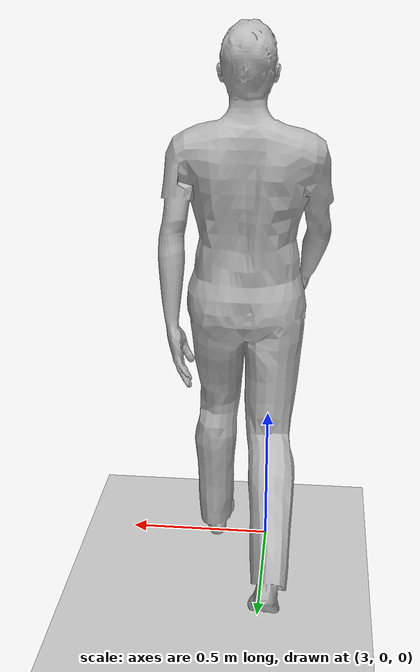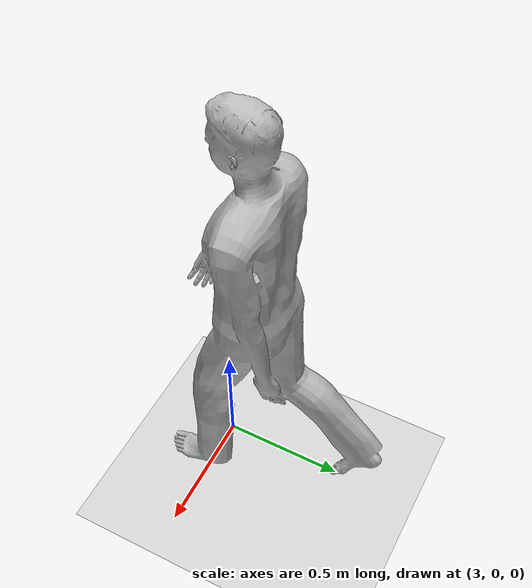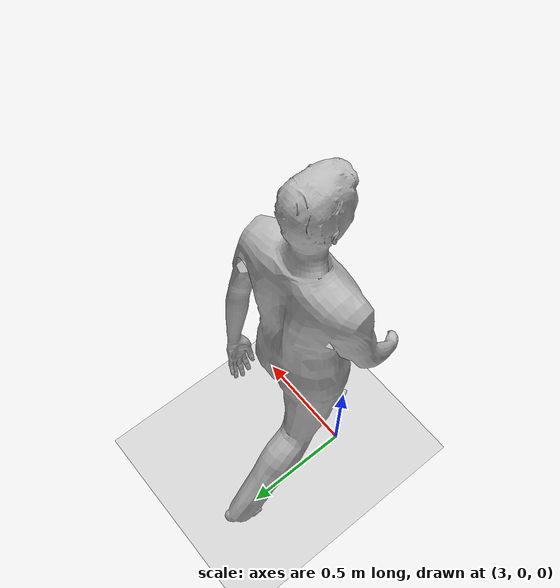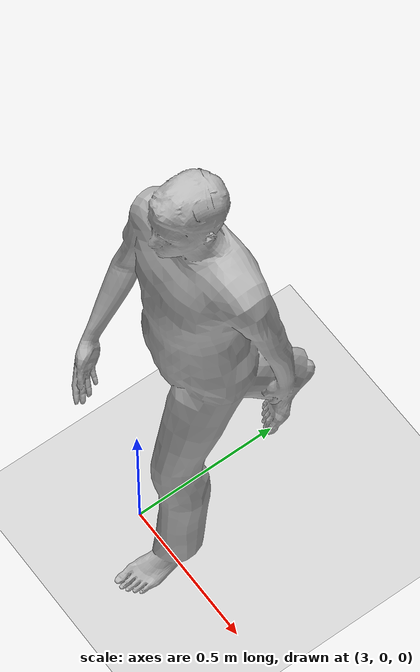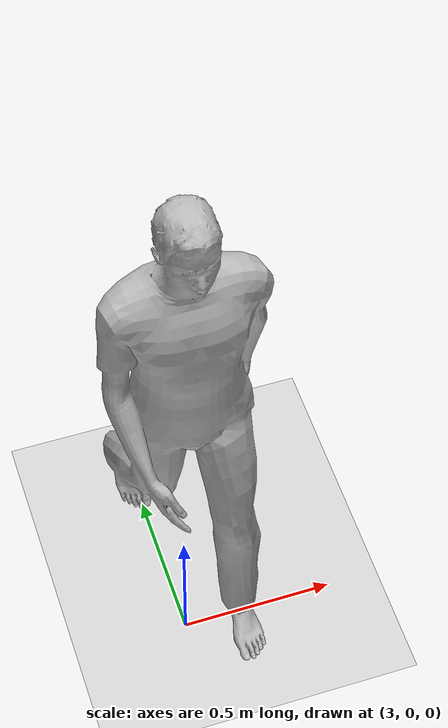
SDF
<sdf version="1.7">
 <world name="default">
  <light name="sun" type="directional">
   <pose>0 0 10 0 -0 0</pose>
   <diffuse>0.8 0.8 0.8 1</diffuse>
   <specular>0.2 0.2 0.2 1</specular>
   <attenuation>
    <range>1000</range>
    <constant>0.9</constant>
    <linear>0.01</linear>
    <quadratic>0.001</quadratic>
   </attenuation>
   <direction>-0.5 0.1 -0.9</direction>
   <spot><inner_angle>0</inner_angle><outer_angle>0</outer_angle><falloff>0</falloff></spot>
  </light>
  <model name="ground_plane">
   <static>1</static>
   <link name="link">
    <collision name="collision">
     <geometry><plane><normal>0 0 1</normal><size>100 100</size></plane></geometry>
     <surface>
      <contact><collide_bitmask>65535</collide_bitmask></contact>
      <friction><ode><mu>100</mu><mu2>50</mu2></ode></friction>
     </surface>
    </collision>
    <visual name="visual">
     <cast_shadows>0</cast_shadows>
     <geometry><plane><normal>0 0 1</normal><size>100 100</size></plane></geometry>
     <material>
      <script><uri>file://media/materials/scripts/gazebo.material</uri><name>Gazebo/Grey</name></script>
     </material>
    </visual>
   </link>
  </model>
  <physics type="ode">
   <max_step_size>0.01</max_step_size>
   <real_time_factor>1</real_time_factor>
   <real_time_update_rate>100</real_time_update_rate>
  </physics>
  <gravity>0 0 -9.8</gravity>
  <magnetic_field>6e-06 2.3e-05 -4.2e-05</magnetic_field>
  <atmosphere type="adiabatic"/>
  <scene><ambient>0.4 0.4 0.4 1</ambient><background>0.7 0.7 0.7 1</background><shadows>1</shadows></scene>
  <spherical_coordinates>
   <surface_model>EARTH_WGS84</surface_model>
   <latitude_deg>0</latitude_deg>
   <longitude_deg>0</longitude_deg>
   <elevation>0</elevation>
   <heading_deg>0</heading_deg>
  </spherical_coordinates>
  <model name="person_walking">
   <link name="link">
    <inertial>
     <pose>0 0 0.95 0 -0 0</pose>
     <mass>80</mass>
     <inertia><ixx>27.82</ixx><ixy>0</ixy><ixz>0</ixz><iyy>24.88</iyy><iyz>0</iyz><izz>4.57</izz></inertia>
    </inertial>
    <collision name="bottom">
     <pose>0 0 0.01 0 -0 0</pose>
     <geometry><box><size>0.35 0.75 0.02</size></box></geometry>
    </collision>
    <collision name="person">
     <pose>0 0 -0.02 0 -0 0</pose>
     <geometry><mesh><uri>model://person_walking/meshes/walking.dae</uri></mesh></geometry>
    </collision>
    <visual name="visual">
     <pose>0 0 -0.02 0 -0 0</pose>
     <geometry><mesh><uri>model://person_walking/meshes/walking.dae</uri></mesh></geometry>
    </visual>
    <plugin name="model_push" filename="libgazebo_ros_model_push.so">
     <ros><namespace>/person_walking</namespace><remapping>cmd_vel:=cmd_vel</remapping></ros>
    </plugin>
   </link>
   <pose>3.07215 0.205388 3.9e-05 -0.000109 2e-05 0.00376</pose>
  </model>
 </world>
</sdf>
